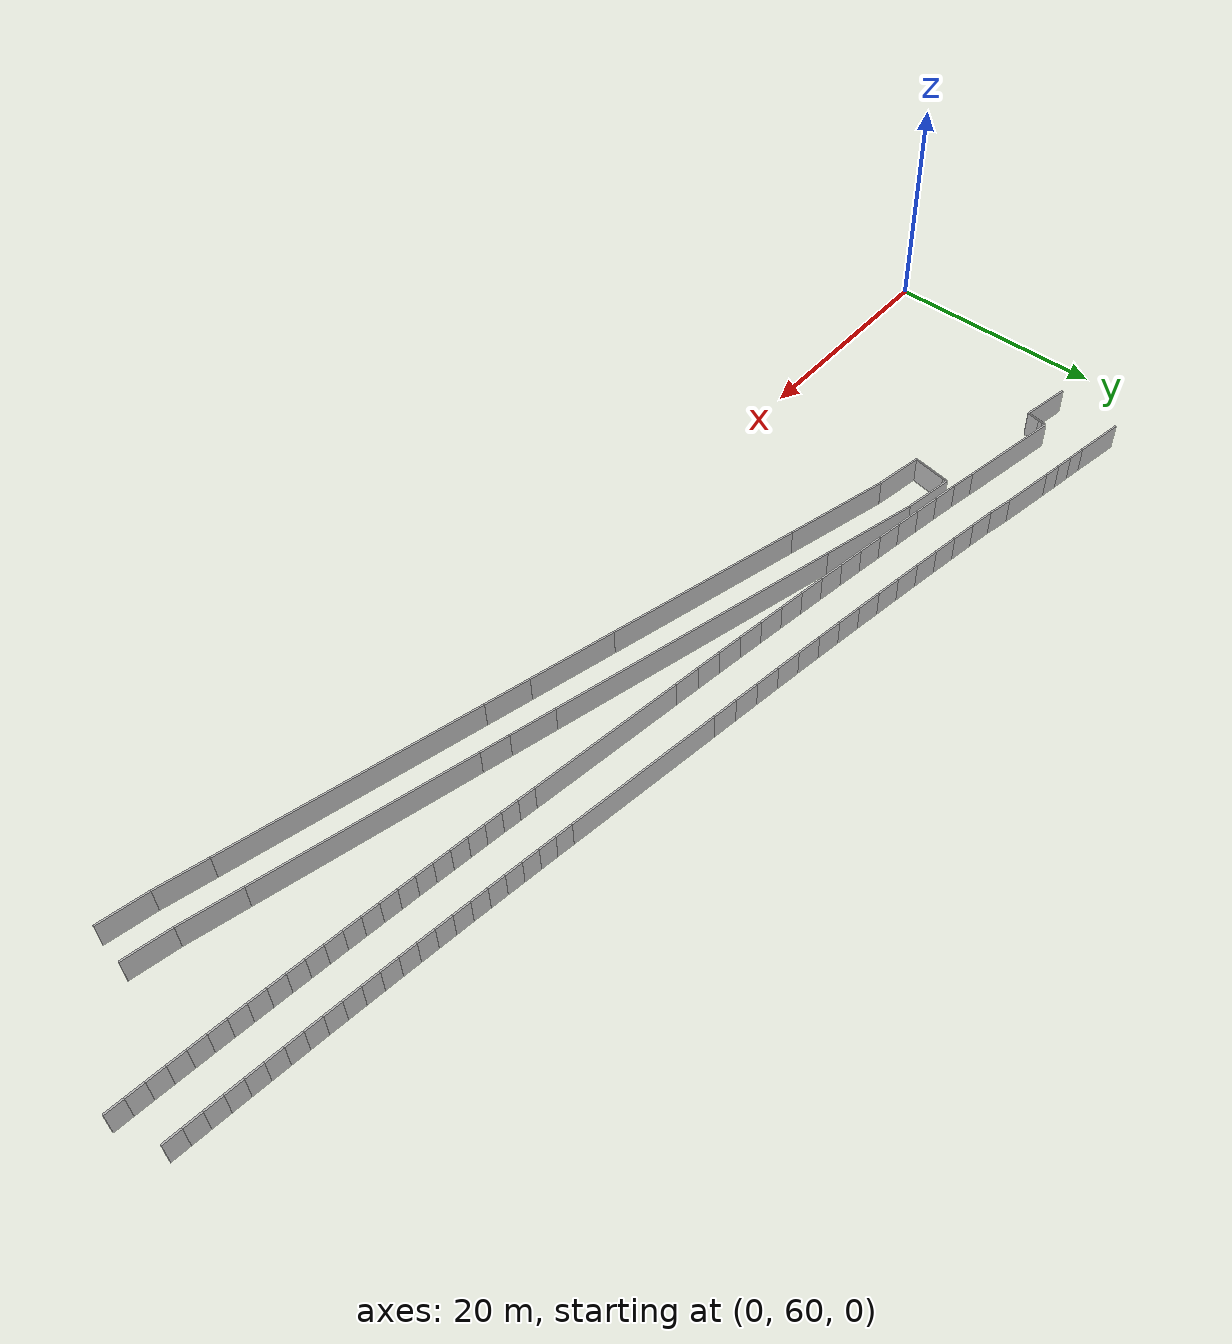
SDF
<sdf version="1.6">
 <model name="sps_1101">
  <static>1</static>
  <allow_auto_disable>0</allow_auto_disable>
  <link name="Wall33">
   <collision name="collision"><geometry><box><size>9.35856 0.15 2.5</size></box></geometry></collision>
   <visual name="visual">
    <geometry><box><size>9.35856 0.15 2.5</size></box></geometry>
    <transparency>0.0</transparency>
   </visual>
   <pose>14.7813 80.5347 1.25 0 0 -0.168777</pose>
  </link>
  <link name="Wall52">
   <collision name="collision"><geometry><box><size>4.38192 0.15 2.5</size></box></geometry></collision>
   <visual name="visual">
    <geometry><box><size>4.38192 0.15 2.5</size></box></geometry>
    <transparency>0.0</transparency>
   </visual>
   <pose>86.597 59.3032 1.25 0 -0 2.9005</pose>
  </link>
  <link name="Wall53">
   <collision name="collision"><geometry><box><size>22.0786 0.15 2.5</size></box></geometry></collision>
   <visual name="visual">
    <geometry><box><size>22.0786 0.15 2.5</size></box></geometry>
    <transparency>0.0</transparency>
   </visual>
   <pose>73.7494 62.4621 1.25 0 -0 2.9005</pose>
  </link>
  <link name="Wall200">
   <collision name="collision"><geometry><box><size>4.50047 0.15 2.5</size></box></geometry></collision>
   <visual name="visual">
    <geometry><box><size>4.50047 0.15 2.5</size></box></geometry>
    <transparency>0.0</transparency>
   </visual>
   <pose>8.66296 85.7411 1.25 0 0 -0.168696</pose>
  </link>
  <link name="Wall201">
   <collision name="collision"><geometry><box><size>7.68454 0.15 2.5</size></box></geometry></collision>
   <visual name="visual">
    <geometry><box><size>7.68454 0.15 2.5</size></box></geometry>
    <transparency>0.0</transparency>
   </visual>
   <pose>55.3868 66.9762 1.25 0 -0 2.90063</pose>
  </link>
  <link name="Wall202">
   <collision name="collision"><geometry><box><size>17.6974 0.15 2.5</size></box></geometry></collision>
   <visual name="visual">
    <geometry><box><size>17.6974 0.15 2.5</size></box></geometry>
    <transparency>0.0</transparency>
   </visual>
   <pose>43.0625 70.0047 1.25 0 -0 2.90063</pose>
  </link>
  <link name="Wall203">
   <collision name="collision"><geometry><box><size>9.57358 0.15 2.5</size></box></geometry></collision>
   <visual name="visual">
    <geometry><box><size>9.57358 0.15 2.5</size></box></geometry>
    <transparency>0.0</transparency>
   </visual>
   <pose>29.8209 73.2586 1.25 0 -0 2.90063</pose>
  </link>
  <link name="Wall234">
   <collision name="collision"><geometry><box><size>13.7202 0.15 2.5</size></box></geometry></collision>
   <visual name="visual">
    <geometry><box><size>13.7202 0.15 2.5</size></box></geometry>
    <transparency>0.0</transparency>
   </visual>
   <pose>59.8038 78.0759 1.25 0 0 -0.130338</pose>
  </link>
  <link name="Wall235">
   <collision name="collision"><geometry><box><size>4.00645 0.15 2.5</size></box></geometry></collision>
   <visual name="visual">
    <geometry><box><size>4.00645 0.15 2.5</size></box></geometry>
    <transparency>0.0</transparency>
   </visual>
   <pose>91.4386 61.8258 1.25 0 0 -0.188573</pose>
  </link>
  <link name="Wall295">
   <collision name="collision"><geometry><box><size>3.07376 0.15 2.5</size></box></geometry></collision>
   <visual name="visual">
    <geometry><box><size>3.07376 0.15 2.5</size></box></geometry>
    <transparency>0.0</transparency>
   </visual>
   <pose>21.1081 76.6262 1.25 0 0 -1.73465</pose>
  </link>
  <link name="Wall302">
   <collision name="collision"><geometry><box><size>4.02802 0.15 2.5</size></box></geometry></collision>
   <visual name="visual">
    <geometry><box><size>4.02802 0.15 2.5</size></box></geometry>
    <transparency>0.0</transparency>
   </visual>
   <pose>61.9095 68.9778 1.25 0 0 -0.240793</pose>
  </link>
  <link name="Wall365">
   <collision name="collision"><geometry><box><size>4.50641 0.15 2.5</size></box></geometry></collision>
   <visual name="visual">
    <geometry><box><size>4.50641 0.15 2.5</size></box></geometry>
    <transparency>0.0</transparency>
   </visual>
   <pose>23.6518 78.1995 1.25 0 0 -0.163692</pose>
  </link>
  <link name="Wall439">
   <collision name="collision"><geometry><box><size>0.400879 0.15 2.5</size></box></geometry></collision>
   <visual name="visual">
    <geometry><box><size>0.400879 0.15 2.5</size></box></geometry>
    <transparency>0.0</transparency>
   </visual>
   <pose>10.0657 80.79 1.25 0 0 -1.74726</pose>
  </link>
  <link name="Wall440">
   <collision name="collision"><geometry><box><size>2.19394 0.15 2.5</size></box></geometry></collision>
   <visual name="visual">
    <geometry><box><size>2.19394 0.15 2.5</size></box></geometry>
    <transparency>0.0</transparency>
   </visual>
   <pose>20.4733 79.552 1.25 0 0 -0.180274</pose>
  </link>
  <link name="Wall441">
   <collision name="collision"><geometry><box><size>4.37286 0.15 2.5</size></box></geometry></collision>
   <visual name="visual">
    <geometry><box><size>4.37286 0.15 2.5</size></box></geometry>
    <transparency>0.0</transparency>
   </visual>
   <pose>23.0149 74.7554 1.25 0 0 -0.162852</pose>
  </link>
  <link name="Wall453">
   <collision name="collision"><geometry><box><size>2.53132 0.15 2.5</size></box></geometry></collision>
   <visual name="visual">
    <geometry><box><size>2.53132 0.15 2.5</size></box></geometry>
    <transparency>0.0</transparency>
   </visual>
   <pose>65.0945 68.1953 1.25 0 0 -0.24111</pose>
  </link>
  <link name="Wall454">
   <collision name="collision"><geometry><box><size>18.6864 0.15 2.5</size></box></geometry></collision>
   <visual name="visual">
    <geometry><box><size>18.6864 0.15 2.5</size></box></geometry>
    <transparency>0.0</transparency>
   </visual>
   <pose>75.3965 65.6621 1.25 0 0 -0.24111</pose>
  </link>
  <link name="Wall455">
   <collision name="collision"><geometry><box><size>5.15039 0.15 2.5</size></box></geometry></collision>
   <visual name="visual">
    <geometry><box><size>5.15039 0.15 2.5</size></box></geometry>
    <transparency>0.0</transparency>
   </visual>
   <pose>86.9701 62.8162 1.25 0 0 -0.24111</pose>
  </link>
  <link name="Wall547">
   <collision name="collision"><geometry><box><size>4.49949 0.15 2.5</size></box></geometry></collision>
   <visual name="visual">
    <geometry><box><size>4.49949 0.15 2.5</size></box></geometry>
    <transparency>0.0</transparency>
   </visual>
   <pose>7.60625 79.817 1.25 0 -0 2.96515</pose>
  </link>
  <link name="Wall548">
   <collision name="collision"><geometry><box><size>1.18918 0.15 2.5</size></box></geometry></collision>
   <visual name="visual">
    <geometry><box><size>1.18918 0.15 2.5</size></box></geometry>
    <transparency>0.0</transparency>
   </visual>
   <pose>9.92577 80.0074 1.25 0 0 -1.74782</pose>
  </link>
  <link name="Wall549">
   <collision name="collision"><geometry><box><size>0.340164 0.15 2.5</size></box></geometry></collision>
   <visual name="visual">
    <geometry><box><size>0.340164 0.15 2.5</size></box></geometry>
    <transparency>0.0</transparency>
   </visual>
   <pose>10.1347 81.154 1.25 0 0 -1.77094</pose>
  </link>
  <link name="Wall557">
   <collision name="collision"><geometry><box><size>4.02779 0.15 2.5</size></box></geometry></collision>
   <visual name="visual">
    <geometry><box><size>4.02779 0.15 2.5</size></box></geometry>
    <transparency>0.0</transparency>
   </visual>
   <pose>61.0738 65.5786 1.25 0 -0 2.90058</pose>
  </link>
  <link name="Wall558">
   <collision name="collision"><geometry><box><size>4.19529 0.15 2.5</size></box></geometry></collision>
   <visual name="visual">
    <geometry><box><size>4.19529 0.15 2.5</size></box></geometry>
    <transparency>0.0</transparency>
   </visual>
   <pose>90.7851 58.3872 1.25 0 -0 2.95317</pose>
  </link>
  <link name="Wall615">
   <collision name="collision"><geometry><box><size>0.429903 0.15 2.5</size></box></geometry></collision>
   <visual name="visual">
    <geometry><box><size>0.429903 0.15 2.5</size></box></geometry>
    <transparency>0.0</transparency>
   </visual>
   <pose>21.3938 78.3546 1.25 0 0 -1.73394</pose>
  </link>
  <link name="Wall616">
   <collision name="collision"><geometry><box><size>2.20188 0.15 2.5</size></box></geometry></collision>
   <visual name="visual">
    <geometry><box><size>2.20188 0.15 2.5</size></box></geometry>
    <transparency>0.0</transparency>
   </visual>
   <pose>21.1452 83.6065 1.25 0 0 -0.20715</pose>
  </link>
  <link name="Wall617">
   <collision name="collision"><geometry><box><size>8.85029 0.15 2.5</size></box></geometry></collision>
   <visual name="visual">
    <geometry><box><size>8.85029 0.15 2.5</size></box></geometry>
    <transparency>0.0</transparency>
   </visual>
   <pose>30.1721 76.7763 1.25 0 0 -0.240956</pose>
  </link>
  <link name="Wall618">
   <collision name="collision"><geometry><box><size>26.2423 0.15 2.5</size></box></geometry></collision>
   <visual name="visual">
    <geometry><box><size>26.2423 0.15 2.5</size></box></geometry>
    <transparency>0.0</transparency>
   </visual>
   <pose>47.2115 72.5892 1.25 0 0 -0.240956</pose>
  </link>
  <link name="Wall629">
   <collision name="collision"><geometry><box><size>13.7199 0.15 2.5</size></box></geometry></collision>
   <visual name="visual">
    <geometry><box><size>13.7199 0.15 2.5</size></box></geometry>
    <transparency>0.0</transparency>
   </visual>
   <pose>59.2655 73.9708 1.25 0 -0 3.0113</pose>
  </link>
  <link name="Wall3622">
   <collision name="collision"><geometry><box><size>1.49649 0.15 2.5</size></box></geometry></collision>
   <visual name="visual">
    <geometry><box><size>1.49649 0.15 2.5</size></box></geometry>
    <transparency>0.0</transparency>
   </visual>
   <pose>67.3476 77.0869 1.25 0 0 -0.130517</pose>
  </link>
  <link name="Wall3623">
   <collision name="collision"><geometry><box><size>1.49658 0.15 2.5</size></box></geometry></collision>
   <visual name="visual">
    <geometry><box><size>1.49658 0.15 2.5</size></box></geometry>
    <transparency>0.0</transparency>
   </visual>
   <pose>68.8315 76.8934 1.25 0 0 -0.128781</pose>
  </link>
  <link name="Wall3624">
   <collision name="collision"><geometry><box><size>1.49655 0.15 2.5</size></box></geometry></collision>
   <visual name="visual">
    <geometry><box><size>1.49655 0.15 2.5</size></box></geometry>
    <transparency>0.0</transparency>
   </visual>
   <pose>70.3158 76.7023 1.25 0 0 -0.127304</pose>
  </link>
  <link name="Wall3625">
   <collision name="collision"><geometry><box><size>1.49645 0.15 2.5</size></box></geometry></collision>
   <visual name="visual">
    <geometry><box><size>1.49645 0.15 2.5</size></box></geometry>
    <transparency>0.0</transparency>
   </visual>
   <pose>71.8004 76.5134 1.25 0 0 -0.125832</pose>
  </link>
  <link name="Wall3626">
   <collision name="collision"><geometry><box><size>1.49652 0.15 2.5</size></box></geometry></collision>
   <visual name="visual">
    <geometry><box><size>1.49652 0.15 2.5</size></box></geometry>
    <transparency>0.0</transparency>
   </visual>
   <pose>73.2852 76.3268 1.25 0 0 -0.124223</pose>
  </link>
  <link name="Wall3627">
   <collision name="collision"><geometry><box><size>1.49664 0.15 2.5</size></box></geometry></collision>
   <visual name="visual">
    <geometry><box><size>1.49664 0.15 2.5</size></box></geometry>
    <transparency>0.0</transparency>
   </visual>
   <pose>74.7704 76.1426 1.25 0 0 -0.122569</pose>
  </link>
  <link name="Wall3628">
   <collision name="collision"><geometry><box><size>1.49656 0.15 2.5</size></box></geometry></collision>
   <visual name="visual">
    <geometry><box><size>1.49656 0.15 2.5</size></box></geometry>
    <transparency>0.0</transparency>
   </visual>
   <pose>76.2559 75.9607 1.25 0 0 -0.121097</pose>
  </link>
  <link name="Wall3629">
   <collision name="collision"><geometry><box><size>1.49663 0.15 2.5</size></box></geometry></collision>
   <visual name="visual">
    <geometry><box><size>1.49663 0.15 2.5</size></box></geometry>
    <transparency>0.0</transparency>
   </visual>
   <pose>77.7417 75.7811 1.25 0 0 -0.119489</pose>
  </link>
  <link name="Wall3630">
   <collision name="collision"><geometry><box><size>1.49641 0.15 2.5</size></box></geometry></collision>
   <visual name="visual">
    <geometry><box><size>1.49641 0.15 2.5</size></box></geometry>
    <transparency>0.0</transparency>
   </visual>
   <pose>79.2277 75.6039 1.25 0 0 -0.117905</pose>
  </link>
  <link name="Wall3631">
   <collision name="collision"><geometry><box><size>1.49649 0.15 2.5</size></box></geometry></collision>
   <visual name="visual">
    <geometry><box><size>1.49649 0.15 2.5</size></box></geometry>
    <transparency>0.0</transparency>
   </visual>
   <pose>80.7139 75.4291 1.25 0 0 -0.116256</pose>
  </link>
  <link name="Wall3632">
   <collision name="collision"><geometry><box><size>1.49642 0.15 2.5</size></box></geometry></collision>
   <visual name="visual">
    <geometry><box><size>1.49642 0.15 2.5</size></box></geometry>
    <transparency>0.0</transparency>
   </visual>
   <pose>82.2003 75.2566 1.25 0 0 -0.114783</pose>
  </link>
  <link name="Wall3633">
   <collision name="collision"><geometry><box><size>1.49663 0.15 2.5</size></box></geometry></collision>
   <visual name="visual">
    <geometry><box><size>1.49663 0.15 2.5</size></box></geometry>
    <transparency>0.0</transparency>
   </visual>
   <pose>83.6872 75.0864 1.25 0 0 -0.113166</pose>
  </link>
  <link name="Wall3634">
   <collision name="collision"><geometry><box><size>1.49649 0.15 2.5</size></box></geometry></collision>
   <visual name="visual">
    <geometry><box><size>1.49649 0.15 2.5</size></box></geometry>
    <transparency>0.0</transparency>
   </visual>
   <pose>85.1743 74.9186 1.25 0 0 -0.111576</pose>
  </link>
  <link name="Wall3635">
   <collision name="collision"><geometry><box><size>1.49664 0.15 2.5</size></box></geometry></collision>
   <visual name="visual">
    <geometry><box><size>1.49664 0.15 2.5</size></box></geometry>
    <transparency>0.0</transparency>
   </visual>
   <pose>86.6617 74.7532 1.25 0 0 -0.109923</pose>
  </link>
  <link name="Wall3636">
   <collision name="collision"><geometry><box><size>1.49634 0.15 2.5</size></box></geometry></collision>
   <visual name="visual">
    <geometry><box><size>1.49634 0.15 2.5</size></box></geometry>
    <transparency>0.0</transparency>
   </visual>
   <pose>88.1493 74.5901 1.25 0 0 -0.108468</pose>
  </link>
  <link name="Wall3637">
   <collision name="collision"><geometry><box><size>1.49655 0.15 2.5</size></box></geometry></collision>
   <visual name="visual">
    <geometry><box><size>1.49655 0.15 2.5</size></box></geometry>
    <transparency>0.0</transparency>
   </visual>
   <pose>89.637 74.4294 1.25 0 0 -0.10673</pose>
  </link>
  <link name="Wall3638">
   <collision name="collision"><geometry><box><size>1.4965 0.15 2.5</size></box></geometry></collision>
   <visual name="visual">
    <geometry><box><size>1.4965 0.15 2.5</size></box></geometry>
    <transparency>0.0</transparency>
   </visual>
   <pose>91.1252 74.2711 1.25 0 0 -0.105216</pose>
  </link>
  <link name="Wall3639">
   <collision name="collision"><geometry><box><size>1.49662 0.15 2.5</size></box></geometry></collision>
   <visual name="visual">
    <geometry><box><size>1.49662 0.15 2.5</size></box></geometry>
    <transparency>0.0</transparency>
   </visual>
   <pose>92.6136 74.1151 1.25 0 0 -0.10365</pose>
  </link>
  <link name="Wall3640">
   <collision name="collision"><geometry><box><size>1.49655 0.15 2.5</size></box></geometry></collision>
   <visual name="visual">
    <geometry><box><size>1.49655 0.15 2.5</size></box></geometry>
    <transparency>0.0</transparency>
   </visual>
   <pose>94.1023 73.9615 1.25 0 0 -0.102014</pose>
  </link>
  <link name="Wall3641">
   <collision name="collision"><geometry><box><size>1.49656 0.15 2.5</size></box></geometry></collision>
   <visual name="visual">
    <geometry><box><size>1.49656 0.15 2.5</size></box></geometry>
    <transparency>0.0</transparency>
   </visual>
   <pose>95.5911 73.8102 1.25 0 0 -0.100497</pose>
  </link>
  <link name="Wall3642">
   <collision name="collision"><geometry><box><size>1.4965 0.15 2.5</size></box></geometry></collision>
   <visual name="visual">
    <geometry><box><size>1.4965 0.15 2.5</size></box></geometry>
    <transparency>0.0</transparency>
   </visual>
   <pose>97.0803 73.6613 1.25 0 0 -0.0988205</pose>
  </link>
  <link name="Wall3643">
   <collision name="collision"><geometry><box><size>1.49648 0.15 2.5</size></box></geometry></collision>
   <visual name="visual">
    <geometry><box><size>1.49648 0.15 2.5</size></box></geometry>
    <transparency>0.0</transparency>
   </visual>
   <pose>98.5695 73.5147 1.25 0 0 -0.0974284</pose>
  </link>
  <link name="Wall4831">
   <collision name="collision"><geometry><box><size>1.55218 0.15 2.5</size></box></geometry></collision>
   <visual name="visual">
    <geometry><box><size>1.55218 0.15 2.5</size></box></geometry>
    <transparency>0.0</transparency>
   </visual>
   <pose>11.6475 85.2404 1.25 0 0 -0.15902</pose>
  </link>
  <link name="Wall4832">
   <collision name="collision"><geometry><box><size>1.55208 0.15 2.5</size></box></geometry></collision>
   <visual name="visual">
    <geometry><box><size>1.55208 0.15 2.5</size></box></geometry>
    <transparency>0.0</transparency>
   </visual>
   <pose>13.1796 84.9919 1.25 0 0 -0.162576</pose>
  </link>
  <link name="Wall4833">
   <collision name="collision"><geometry><box><size>1.55225 0.15 2.5</size></box></geometry></collision>
   <visual name="visual">
    <geometry><box><size>1.55225 0.15 2.5</size></box></geometry>
    <transparency>0.0</transparency>
   </visual>
   <pose>14.7109 84.7378 1.25 0 0 -0.166345</pose>
  </link>
  <link name="Wall4834">
   <collision name="collision"><geometry><box><size>4.65673 0.15 2.5</size></box></geometry></collision>
   <visual name="visual">
    <geometry><box><size>4.65673 0.15 2.5</size></box></geometry>
    <transparency>0.0</transparency>
   </visual>
   <pose>17.7721 84.2211 1.25 0 0 -0.167502</pose>
  </link>
  <link name="Wall7397">
   <collision name="collision"><geometry><box><size>1.50314 0.15 2.5</size></box></geometry></collision>
   <visual name="visual">
    <geometry><box><size>1.50314 0.15 2.5</size></box></geometry>
    <transparency>0.0</transparency>
   </visual>
   <pose>66.8125 72.9817 1.25 0 0 -0.13051</pose>
  </link>
  <link name="Wall7398">
   <collision name="collision"><geometry><box><size>1.50309 0.15 2.5</size></box></geometry></collision>
   <visual name="visual">
    <geometry><box><size>1.50309 0.15 2.5</size></box></geometry>
    <transparency>0.0</transparency>
   </visual>
   <pose>68.3029 72.7872 1.25 0 0 -0.128999</pose>
  </link>
  <link name="Wall7399">
   <collision name="collision"><geometry><box><size>1.503 0.15 2.5</size></box></geometry></collision>
   <visual name="visual">
    <geometry><box><size>1.503 0.15 2.5</size></box></geometry>
    <transparency>0.0</transparency>
   </visual>
   <pose>69.7937 72.5951 1.25 0 0 -0.127286</pose>
  </link>
  <link name="Wall7400">
   <collision name="collision"><geometry><box><size>1.50306 0.15 2.5</size></box></geometry></collision>
   <visual name="visual">
    <geometry><box><size>1.50306 0.15 2.5</size></box></geometry>
    <transparency>0.0</transparency>
   </visual>
   <pose>71.2847 72.4053 1.25 0 0 -0.125972</pose>
  </link>
  <link name="Wall7401">
   <collision name="collision"><geometry><box><size>1.50297 0.15 2.5</size></box></geometry></collision>
   <visual name="visual">
    <geometry><box><size>1.50297 0.15 2.5</size></box></geometry>
    <transparency>0.0</transparency>
   </visual>
   <pose>72.7759 72.2178 1.25 0 0 -0.124179</pose>
  </link>
  <link name="Wall7402">
   <collision name="collision"><geometry><box><size>1.50329 0.15 2.5</size></box></geometry></collision>
   <visual name="visual">
    <geometry><box><size>1.50329 0.15 2.5</size></box></geometry>
    <transparency>0.0</transparency>
   </visual>
   <pose>74.2676 72.0328 1.25 0 0 -0.122597</pose>
  </link>
  <link name="Wall7403">
   <collision name="collision"><geometry><box><size>1.50301 0.15 2.5</size></box></geometry></collision>
   <visual name="visual">
    <geometry><box><size>1.50301 0.15 2.5</size></box></geometry>
    <transparency>0.0</transparency>
   </visual>
   <pose>75.7596 71.8501 1.25 0 0 -0.121106</pose>
  </link>
  <link name="Wall7404">
   <collision name="collision"><geometry><box><size>1.50297 0.15 2.5</size></box></geometry></collision>
   <visual name="visual">
    <geometry><box><size>1.50297 0.15 2.5</size></box></geometry>
    <transparency>0.0</transparency>
   </visual>
   <pose>77.2518 71.6697 1.25 0 0 -0.119514</pose>
  </link>
  <link name="Wall7405">
   <collision name="collision"><geometry><box><size>1.50323 0.15 2.5</size></box></geometry></collision>
   <visual name="visual">
    <geometry><box><size>1.50323 0.15 2.5</size></box></geometry>
    <transparency>0.0</transparency>
   </visual>
   <pose>78.7443 71.4917 1.25 0 0 -0.117899</pose>
  </link>
  <link name="Wall7406">
   <collision name="collision"><geometry><box><size>1.50295 0.15 2.5</size></box></geometry></collision>
   <visual name="visual">
    <geometry><box><size>1.50295 0.15 2.5</size></box></geometry>
    <transparency>0.0</transparency>
   </visual>
   <pose>80.2371 71.3161 1.25 0 0 -0.116285</pose>
  </link>
  <link name="Wall7407">
   <collision name="collision"><geometry><box><size>1.50322 0.15 2.5</size></box></geometry></collision>
   <visual name="visual">
    <geometry><box><size>1.50322 0.15 2.5</size></box></geometry>
    <transparency>0.0</transparency>
   </visual>
   <pose>81.7302 71.1429 1.25 0 0 -0.11467</pose>
  </link>
  <link name="Wall7408">
   <collision name="collision"><geometry><box><size>1.50303 0.15 2.5</size></box></geometry></collision>
   <visual name="visual">
    <geometry><box><size>1.50303 0.15 2.5</size></box></geometry>
    <transparency>0.0</transparency>
   </visual>
   <pose>83.2235 70.972 1.25 0 0 -0.113213</pose>
  </link>
  <link name="Wall7409">
   <collision name="collision"><geometry><box><size>1.50295 0.15 2.5</size></box></geometry></collision>
   <visual name="visual">
    <geometry><box><size>1.50295 0.15 2.5</size></box></geometry>
    <transparency>0.0</transparency>
   </visual>
   <pose>84.717 70.8034 1.25 0 0 -0.111626</pose>
  </link>
  <link name="Wall7410">
   <collision name="collision"><geometry><box><size>1.50326 0.15 2.5</size></box></geometry></collision>
   <visual name="visual">
    <geometry><box><size>1.50326 0.15 2.5</size></box></geometry>
    <transparency>0.0</transparency>
   </visual>
   <pose>86.2109 70.6373 1.25 0 0 -0.109846</pose>
  </link>
  <link name="Wall7411">
   <collision name="collision"><geometry><box><size>1.50302 0.15 2.5</size></box></geometry></collision>
   <visual name="visual">
    <geometry><box><size>1.50302 0.15 2.5</size></box></geometry>
    <transparency>0.0</transparency>
   </visual>
   <pose>87.7051 70.4736 1.25 0 0 -0.108393</pose>
  </link>
  <link name="Wall7412">
   <collision name="collision"><geometry><box><size>1.50301 0.15 2.5</size></box></geometry></collision>
   <visual name="visual">
    <geometry><box><size>1.50301 0.15 2.5</size></box></geometry>
    <transparency>0.0</transparency>
   </visual>
   <pose>89.1995 70.3122 1.25 0 0 -0.106801</pose>
  </link>
  <link name="Wall7413">
   <collision name="collision"><geometry><box><size>1.50305 0.15 2.5</size></box></geometry></collision>
   <visual name="visual">
    <geometry><box><size>1.50305 0.15 2.5</size></box></geometry>
    <transparency>0.0</transparency>
   </visual>
   <pose>90.6941 70.1532 1.25 0 0 -0.105164</pose>
  </link>
  <link name="Wall7414">
   <collision name="collision"><geometry><box><size>1.50313 0.15 2.5</size></box></geometry></collision>
   <visual name="visual">
    <geometry><box><size>1.50313 0.15 2.5</size></box></geometry>
    <transparency>0.0</transparency>
   </visual>
   <pose>92.189 69.9965 1.25 0 0 -0.103689</pose>
  </link>
  <link name="Wall7415">
   <collision name="collision"><geometry><box><size>1.50301 0.15 2.5</size></box></geometry></collision>
   <visual name="visual">
    <geometry><box><size>1.50301 0.15 2.5</size></box></geometry>
    <transparency>0.0</transparency>
   </visual>
   <pose>93.6841 69.8421 1.25 0 0 -0.102105</pose>
  </link>
  <link name="Wall7416">
   <collision name="collision"><geometry><box><size>1.50319 0.15 2.5</size></box></geometry></collision>
   <visual name="visual">
    <geometry><box><size>1.50319 0.15 2.5</size></box></geometry>
    <transparency>0.0</transparency>
   </visual>
   <pose>95.1795 69.6901 1.25 0 0 -0.100501</pose>
  </link>
  <link name="Wall7417">
   <collision name="collision"><geometry><box><size>1.50313 0.15 2.5</size></box></geometry></collision>
   <visual name="visual">
    <geometry><box><size>1.50313 0.15 2.5</size></box></geometry>
    <transparency>0.0</transparency>
   </visual>
   <pose>96.6752 69.5405 1.25 0 0 -0.0988727</pose>
  </link>
  <link name="Wall7418">
   <collision name="collision"><geometry><box><size>1.50308 0.15 2.5</size></box></geometry></collision>
   <visual name="visual">
    <geometry><box><size>1.50308 0.15 2.5</size></box></geometry>
    <transparency>0.0</transparency>
   </visual>
   <pose>98.171 69.3933 1.25 0 0 -0.0973252</pose>
  </link>
  <link name="Wall7419">
   <collision name="collision"><geometry><box><size>1.50309 0.15 2.5</size></box></geometry></collision>
   <visual name="visual">
    <geometry><box><size>1.50309 0.15 2.5</size></box></geometry>
    <transparency>0.0</transparency>
   </visual>
   <pose>99.6671 69.2485 1.25 0 0 -0.0956524</pose>
  </link>
  <link name="Wall8220">
   <collision name="collision"><geometry><box><size>2.22315 0.15 2.5</size></box></geometry></collision>
   <visual name="visual">
    <geometry><box><size>2.22315 0.15 2.5</size></box></geometry>
    <transparency>0.0</transparency>
   </visual>
   <pose>23.2937 83.2097 1.25 0 0 -0.157719</pose>
  </link>
  <link name="Wall8221">
   <collision name="collision"><geometry><box><size>2.223 0.15 2.5</size></box></geometry></collision>
   <visual name="visual">
    <geometry><box><size>2.223 0.15 2.5</size></box></geometry>
    <transparency>0.0</transparency>
   </visual>
   <pose>25.4896 82.8631 1.25 0 0 -0.155367</pose>
  </link>
  <link name="Wall8222">
   <collision name="collision"><geometry><box><size>2.22293 0.15 2.5</size></box></geometry></collision>
   <visual name="visual">
    <geometry><box><size>2.22293 0.15 2.5</size></box></geometry>
    <transparency>0.0</transparency>
   </visual>
   <pose>27.6861 82.5217 1.25 0 0 -0.15301</pose>
  </link>
  <link name="Wall8223">
   <collision name="collision"><geometry><box><size>2.22296 0.15 2.5</size></box></geometry></collision>
   <visual name="visual">
    <geometry><box><size>2.22296 0.15 2.5</size></box></geometry>
    <transparency>0.0</transparency>
   </visual>
   <pose>29.8835 82.1856 1.25 0 0 -0.150564</pose>
  </link>
  <link name="Wall8224">
   <collision name="collision"><geometry><box><size>2.22299 0.15 2.5</size></box></geometry></collision>
   <visual name="visual">
    <geometry><box><size>2.22299 0.15 2.5</size></box></geometry>
    <transparency>0.0</transparency>
   </visual>
   <pose>32.0817 81.8547 1.25 0 0 -0.148257</pose>
  </link>
  <link name="Wall8225">
   <collision name="collision"><geometry><box><size>2.22305 0.15 2.5</size></box></geometry></collision>
   <visual name="visual">
    <geometry><box><size>2.22305 0.15 2.5</size></box></geometry>
    <transparency>0.0</transparency>
   </visual>
   <pose>34.2808 81.5288 1.25 0 0 -0.146005</pose>
  </link>
  <link name="Wall8226">
   <collision name="collision"><geometry><box><size>2.22306 0.15 2.5</size></box></geometry></collision>
   <visual name="visual">
    <geometry><box><size>2.22306 0.15 2.5</size></box></geometry>
    <transparency>0.0</transparency>
   </visual>
   <pose>36.4806 81.2081 1.25 0 0 -0.143536</pose>
  </link>
  <link name="Wall8227">
   <collision name="collision"><geometry><box><size>2.22295 0.15 2.5</size></box></geometry></collision>
   <visual name="visual">
    <geometry><box><size>2.22295 0.15 2.5</size></box></geometry>
    <transparency>0.0</transparency>
   </visual>
   <pose>38.6811 80.8926 1.25 0 0 -0.141268</pose>
  </link>
  <link name="Wall8228">
   <collision name="collision"><geometry><box><size>2.22301 0.15 2.5</size></box></geometry></collision>
   <visual name="visual">
    <geometry><box><size>2.22301 0.15 2.5</size></box></geometry>
    <transparency>0.0</transparency>
   </visual>
   <pose>40.8823 80.5822 1.25 0 0 -0.138907</pose>
  </link>
  <link name="Wall8229">
   <collision name="collision"><geometry><box><size>2.22306 0.15 2.5</size></box></geometry></collision>
   <visual name="visual">
    <geometry><box><size>2.22306 0.15 2.5</size></box></geometry>
    <transparency>0.0</transparency>
   </visual>
   <pose>43.0843 80.2771 1.25 0 0 -0.136465</pose>
  </link>
  <link name="Wall8230">
   <collision name="collision"><geometry><box><size>2.22298 0.15 2.5</size></box></geometry></collision>
   <visual name="visual">
    <geometry><box><size>2.22298 0.15 2.5</size></box></geometry>
    <transparency>0.0</transparency>
   </visual>
   <pose>45.2869 79.9772 1.25 0 0 -0.13417</pose>
  </link>
  <link name="Wall8231">
   <collision name="collision"><geometry><box><size>2.22291 0.15 2.5</size></box></geometry></collision>
   <visual name="visual">
    <geometry><box><size>2.22291 0.15 2.5</size></box></geometry>
    <transparency>0.0</transparency>
   </visual>
   <pose>47.4903 79.6824 1.25 0 0 -0.131848</pose>
  </link>
  <link name="Wall8232">
   <collision name="collision"><geometry><box><size>2.22319 0.15 2.5</size></box></geometry></collision>
   <visual name="visual">
    <geometry><box><size>2.22319 0.15 2.5</size></box></geometry>
    <transparency>0.0</transparency>
   </visual>
   <pose>49.6944 79.3928 1.25 0 0 -0.129449</pose>
  </link>
  <link name="Wall8233">
   <collision name="collision"><geometry><box><size>2.22313 0.15 2.5</size></box></geometry></collision>
   <visual name="visual">
    <geometry><box><size>2.22313 0.15 2.5</size></box></geometry>
    <transparency>0.0</transparency>
   </visual>
   <pose>51.8993 79.1084 1.25 0 0 -0.1271</pose>
  </link>
  <link name="Wall8901">
   <collision name="collision"><geometry><box><size>2.23136 0.15 2.5</size></box></geometry></collision>
   <visual name="visual">
    <geometry><box><size>2.23136 0.15 2.5</size></box></geometry>
    <transparency>0.0</transparency>
   </visual>
   <pose>22.654 79.178 1.25 0 0 -0.1596</pose>
  </link>
  <link name="Wall8902">
   <collision name="collision"><geometry><box><size>2.23117 0.15 2.5</size></box></geometry></collision>
   <visual name="visual">
    <geometry><box><size>2.23117 0.15 2.5</size></box></geometry>
    <transparency>0.0</transparency>
   </visual>
   <pose>24.8573 78.8259 1.25 0 0 -0.157341</pose>
  </link>
  <link name="Wall8903">
   <collision name="collision"><geometry><box><size>2.23111 0.15 2.5</size></box></geometry></collision>
   <visual name="visual">
    <geometry><box><size>2.23111 0.15 2.5</size></box></geometry>
    <transparency>0.0</transparency>
   </visual>
   <pose>27.0613 78.479 1.25 0 0 -0.154881</pose>
  </link>
  <link name="Wall8904">
   <collision name="collision"><geometry><box><size>2.2315 0.15 2.5</size></box></geometry></collision>
   <visual name="visual">
    <geometry><box><size>2.2315 0.15 2.5</size></box></geometry>
    <transparency>0.0</transparency>
   </visual>
   <pose>29.2663 78.1373 1.25 0 0 -0.152612</pose>
  </link>
  <link name="Wall8905">
   <collision name="collision"><geometry><box><size>2.23113 0.15 2.5</size></box></geometry></collision>
   <visual name="visual">
    <geometry><box><size>2.23113 0.15 2.5</size></box></geometry>
    <transparency>0.0</transparency>
   </visual>
   <pose>31.472 77.8007 1.25 0 0 -0.150258</pose>
  </link>
  <link name="Wall8906">
   <collision name="collision"><geometry><box><size>2.23118 0.15 2.5</size></box></geometry></collision>
   <visual name="visual">
    <geometry><box><size>2.23118 0.15 2.5</size></box></geometry>
    <transparency>0.0</transparency>
   </visual>
   <pose>33.6785 77.4694 1.25 0 0 -0.14782</pose>
  </link>
  <link name="Wall8907">
   <collision name="collision"><geometry><box><size>2.23116 0.15 2.5</size></box></geometry></collision>
   <visual name="visual">
    <geometry><box><size>2.23116 0.15 2.5</size></box></geometry>
    <transparency>0.0</transparency>
   </visual>
   <pose>35.8857 77.1433 1.25 0 0 -0.145526</pose>
  </link>
  <link name="Wall8908">
   <collision name="collision"><geometry><box><size>2.23121 0.15 2.5</size></box></geometry></collision>
   <visual name="visual">
    <geometry><box><size>2.23121 0.15 2.5</size></box></geometry>
    <transparency>0.0</transparency>
   </visual>
   <pose>38.0937 76.8223 1.25 0 0 -0.143201</pose>
  </link>
  <link name="Wall8909">
   <collision name="collision"><geometry><box><size>2.2315 0.15 2.5</size></box></geometry></collision>
   <visual name="visual">
    <geometry><box><size>2.2315 0.15 2.5</size></box></geometry>
    <transparency>0.0</transparency>
   </visual>
   <pose>40.3025 76.5065 1.25 0 0 -0.140833</pose>
  </link>
  <link name="Wall8910">
   <collision name="collision"><geometry><box><size>2.23093 0.15 2.5</size></box></geometry></collision>
   <visual name="visual">
    <geometry><box><size>2.23093 0.15 2.5</size></box></geometry>
    <transparency>0.0</transparency>
   </visual>
   <pose>42.512 76.196 1.25 0 0 -0.138411</pose>
  </link>
  <link name="Wall8911">
   <collision name="collision"><geometry><box><size>2.2313 0.15 2.5</size></box></geometry></collision>
   <visual name="visual">
    <geometry><box><size>2.2313 0.15 2.5</size></box></geometry>
    <transparency>0.0</transparency>
   </visual>
   <pose>44.7222 75.8906 1.25 0 0 -0.136207</pose>
  </link>
  <link name="Wall8912">
   <collision name="collision"><geometry><box><size>2.2313 0.15 2.5</size></box></geometry></collision>
   <visual name="visual">
    <geometry><box><size>2.2313 0.15 2.5</size></box></geometry>
    <transparency>0.0</transparency>
   </visual>
   <pose>46.9332 75.5903 1.25 0 0 -0.133777</pose>
  </link>
  <link name="Wall8913">
   <collision name="collision"><geometry><box><size>2.23127 0.15 2.5</size></box></geometry></collision>
   <visual name="visual">
    <geometry><box><size>2.23127 0.15 2.5</size></box></geometry>
    <transparency>0.0</transparency>
   </visual>
   <pose>49.1449 75.2953 1.25 0 0 -0.131405</pose>
  </link>
  <link name="Wall8914">
   <collision name="collision"><geometry><box><size>2.23131 0.15 2.5</size></box></geometry></collision>
   <visual name="visual">
    <geometry><box><size>2.23131 0.15 2.5</size></box></geometry>
    <transparency>0.0</transparency>
   </visual>
   <pose>51.3573 75.0056 1.25 0 0 -0.129003</pose>
  </link>
 </model>
</sdf>
